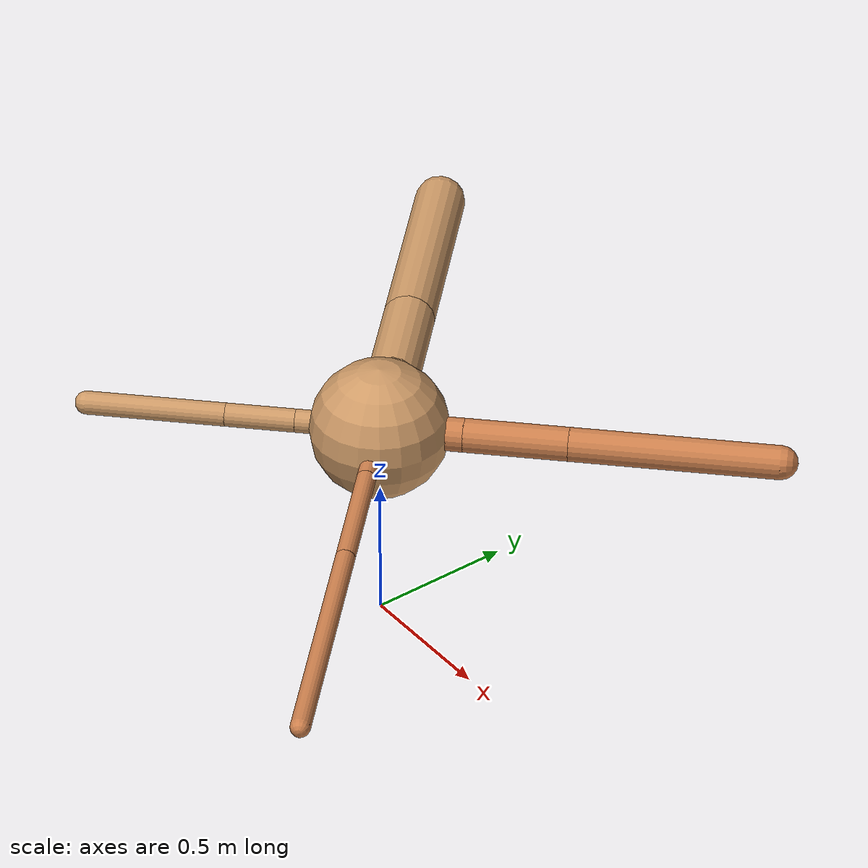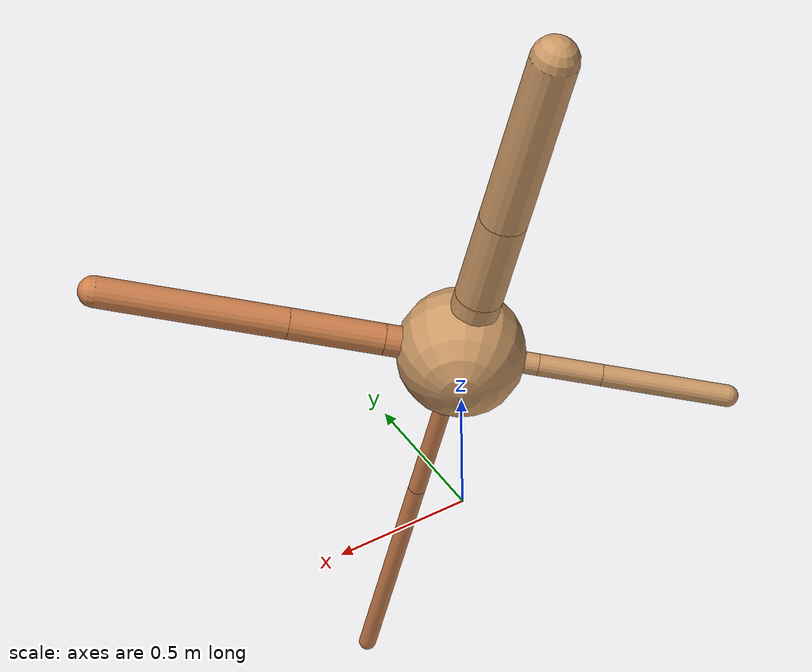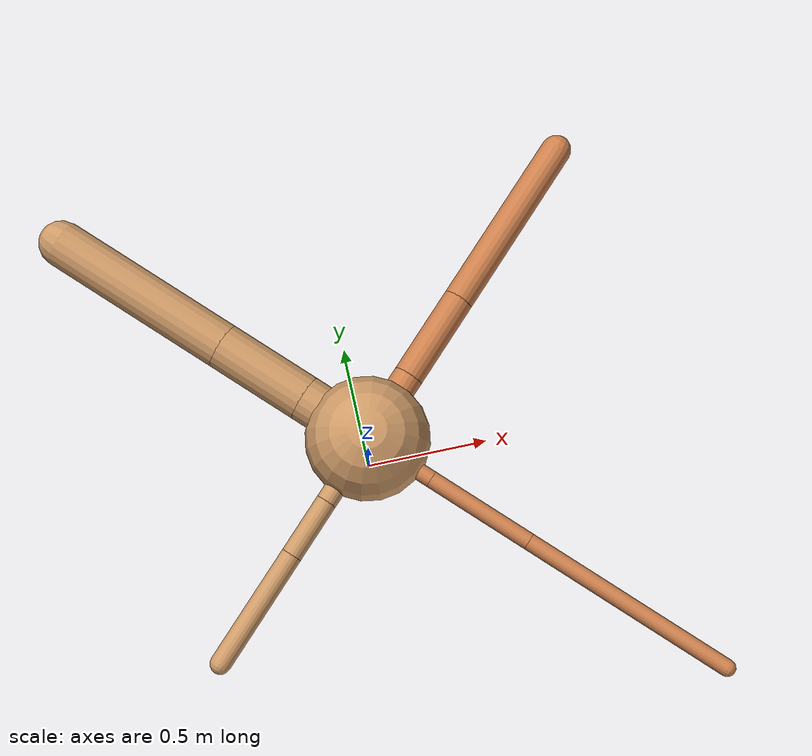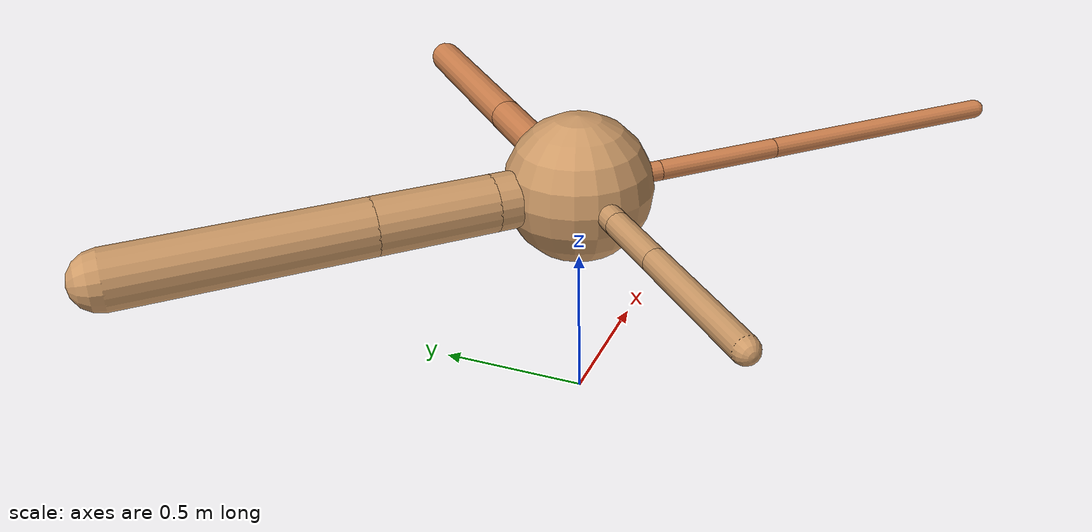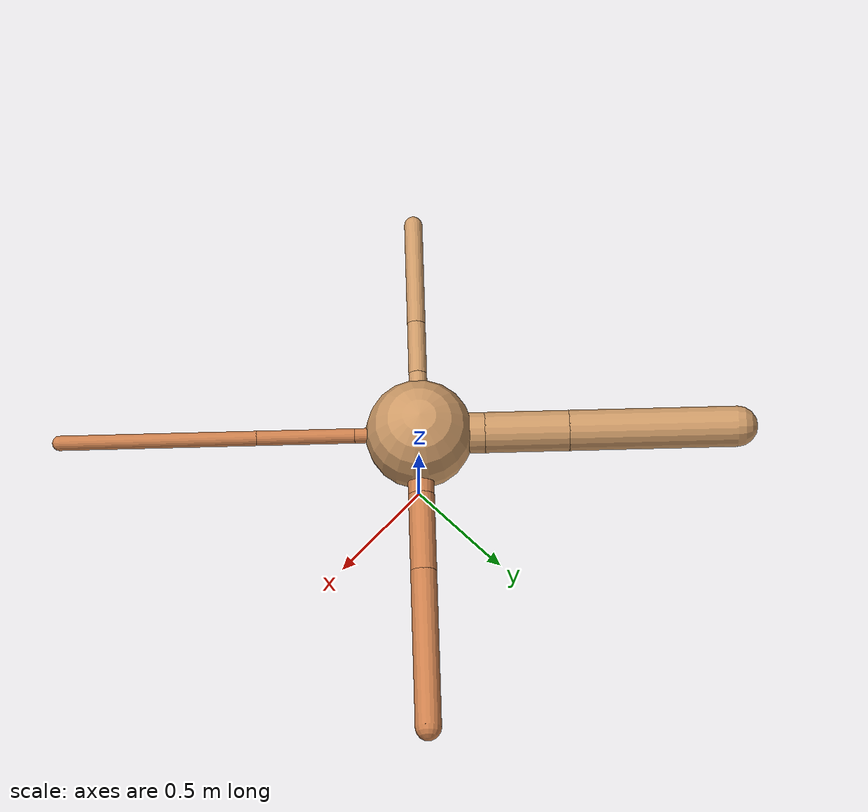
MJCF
<?xml version="1.0" ?>
<mujoco model="ant">

	<compiler angle="degree" coordinate="local" inertiafromgeom="true"/>

	<option integrator="RK4" timestep="0.01"/>

	<custom>

		<numeric data="0.0 0.0 0.55 1.0 0.0 0.0 0.0 0.0 1.0 0.0 -1.0 0.0 -1.0 0.0 1.0" name="init_qpos"/>

	</custom>

	<default>

		<joint armature="1" damping="1" limited="true"/>

		<geom conaffinity="0" condim="3" density="5.0" friction="1.5 0.1 0.1" margin="0.01" rgba="0.8 0.6 0.4 1"/>

	</default>

	<worldbody>

		<body name="torso" pos="0 0 0.75">

			<geom name="torso_geom" pos="0 0 0" size="0.2364216801864538" type="sphere"/>

			<!--joint armature="0" damping="0" limited="false" margin="0.01" name="root" pos="0 0 0" type="free"/-->

			<body name="front_left_leg" pos="0 0 0">

				<geom fromto="0 0 0 0.2 0.2 0" name="aux_1_geom" size="0.05768002011465138" type="capsule" rgba=".8 .5 .3 1"/>

				<body name="aux_1" pos="0.2 0.2 0">

					<joint axis="0 0 1" name="hip_1" pos="0.0 0.0 0.0" range="-40 40" type="hinge"/>

					<geom fromto="0 0 0 0.24813138644687657 0.24813138644687657 0" name="left_leg_geom" size="0.05768002011465138" type="capsule" rgba=".8 .5 .3 1"/>

					<body pos="0.24813138644687657 0.24813138644687657 0" name="front_left_foot">

						<joint axis="-1 1 0" name="ankle_1" pos="0.0 0.0 0.0" range="30 100" type="hinge"/>

						<geom fromto="0 0 0 0.49626277289375315 0.49626277289375315 0" name="left_ankle_geom" size="0.05768002011465138" type="capsule" rgba=".8 .5 .3 1"/>

					</body>

				</body>

			</body>

			<body name="front_right_leg" pos="0 0 0">

				<geom fromto="0 0 0 -0.2 0.2 0" name="aux_2_geom" size="0.08898888758140101" type="capsule"/>

				<body name="aux_2" pos="-0.2 0.2 0">

					<joint axis="0 0 1" name="hip_2" pos="0.0 0.0 0.0" range="-40 40" type="hinge"/>

					<geom fromto="0 0 0 -0.2602308895719356 0.2602308895719356 0" name="right_leg_geom" size="0.08898888758140101" type="capsule"/>

					<body pos="-0.2602308895719356 0.2602308895719356 0" name="front_right_foot">

						<joint axis="1 1 0" name="ankle_2" pos="0.0 0.0 0.0" range="-100 -30" type="hinge"/>

						<geom fromto="0 0 0 -0.5204617791438712 0.5204617791438712 0" name="right_ankle_geom" size="0.08898888758140101" type="capsule"/>

					</body>

				</body>

			</body>

			<body name="left_back_leg" pos="0 0 0">

				<geom fromto="0 0 0 -0.2 -0.2 0" name="aux_3_geom" size="0.03987703869071536" type="capsule"/>

				<body name="aux_3" pos="-0.2 -0.2 0">

					<joint axis="0 0 1" name="hip_3" pos="0.0 0.0 0.0" range="-40 40" type="hinge"/>

					<geom fromto="0 0 0 -0.16713387752115738 -0.16713387752115738 0" name="back_leg_geom" size="0.03987703869071536" type="capsule"/>

					<body pos="-0.16713387752115738 -0.16713387752115738 0" name="left_back_foot">

						<joint axis="-1 1 0" name="ankle_3" pos="0.0 0.0 0.0" range="-100 -30" type="hinge"/>

						<geom fromto="0 0 0 -0.33426775504231476 -0.33426775504231476 0" name="third_ankle_geom" size="0.03987703869071536" type="capsule"/>

					</body>

				</body>

			</body>

			<body name="right_back_leg" pos="0 0 0">

				<geom fromto="0 0 0 0.2 -0.2 0" name="aux_4_geom" size="0.03225875008788561" type="capsule" rgba=".8 .5 .3 1"/>

				<body name="aux_4" pos="0.2 -0.2 0">

					<joint axis="0 0 1" name="hip_4" pos="0.0 0.0 0.0" range="-40 40" type="hinge"/>

					<geom fromto="0 0 0 0.30269867982108356 -0.30269867982108356 0" name="rightback_leg_geom" size="0.03225875008788561" type="capsule" rgba=".8 .5 .3 1"/>

					<body pos="0.30269867982108356 -0.30269867982108356 0" name="right_back_foot">

						<joint axis="1 1 0" name="ankle_4" pos="0.0 0.0 0.0" range="30 100" type="hinge"/>

						<geom fromto="0 0 0 0.6053973596421671 -0.6053973596421671 0" name="fourth_ankle_geom" size="0.03225875008788561" type="capsule" rgba=".8 .5 .3 1"/>

					</body>

				</body>

			</body>

		</body>

	</worldbody>

	<actuator>

		<motor ctrllimited="true" ctrlrange="-1.0 1.0" joint="hip_4" gear="150"/>

		<motor ctrllimited="true" ctrlrange="-1.0 1.0" joint="ankle_4" gear="150"/>

		<motor ctrllimited="true" ctrlrange="-1.0 1.0" joint="hip_1" gear="150"/>

		<motor ctrllimited="true" ctrlrange="-1.0 1.0" joint="ankle_1" gear="150"/>

		<motor ctrllimited="true" ctrlrange="-1.0 1.0" joint="hip_2" gear="150"/>

		<motor ctrllimited="true" ctrlrange="-1.0 1.0" joint="ankle_2" gear="150"/>

		<motor ctrllimited="true" ctrlrange="-1.0 1.0" joint="hip_3" gear="150"/>

		<motor ctrllimited="true" ctrlrange="-1.0 1.0" joint="ankle_3" gear="150"/>

	</actuator>

</mujoco>
